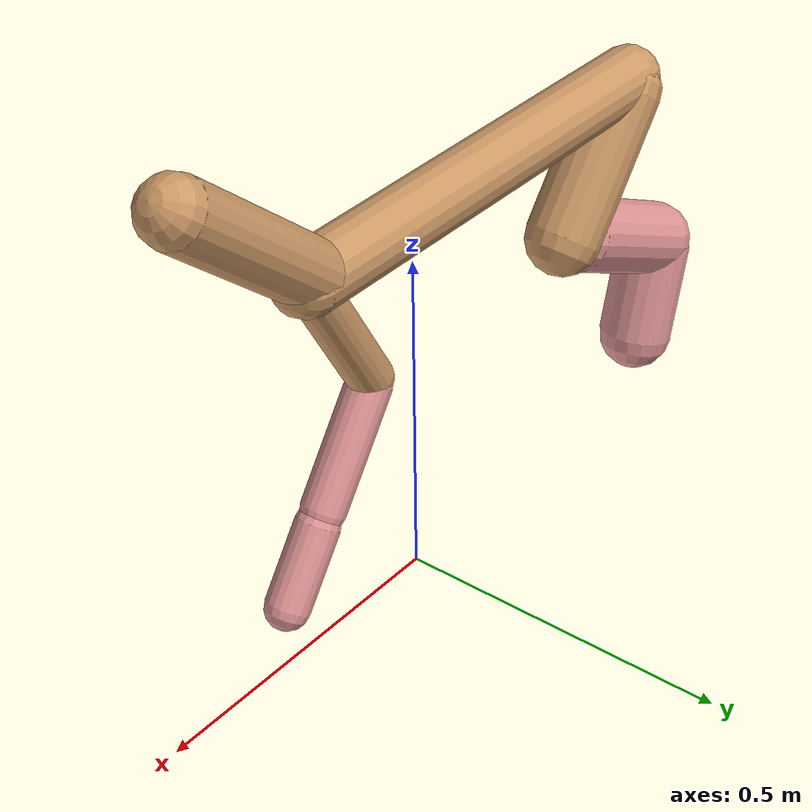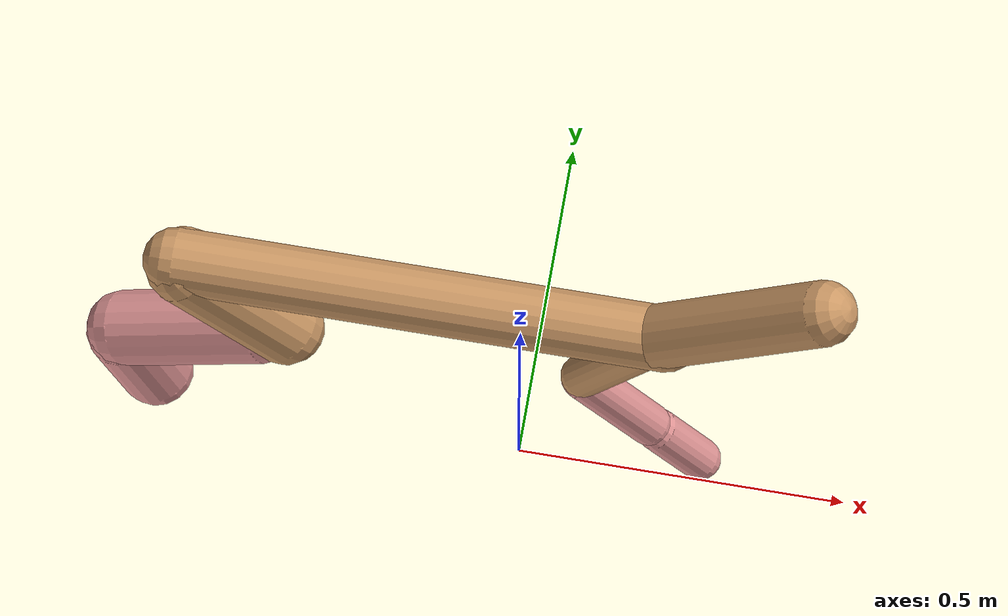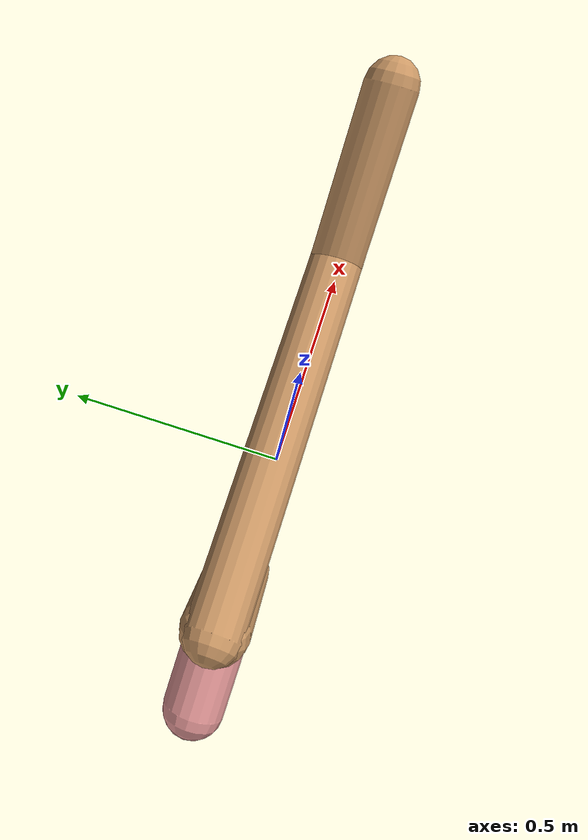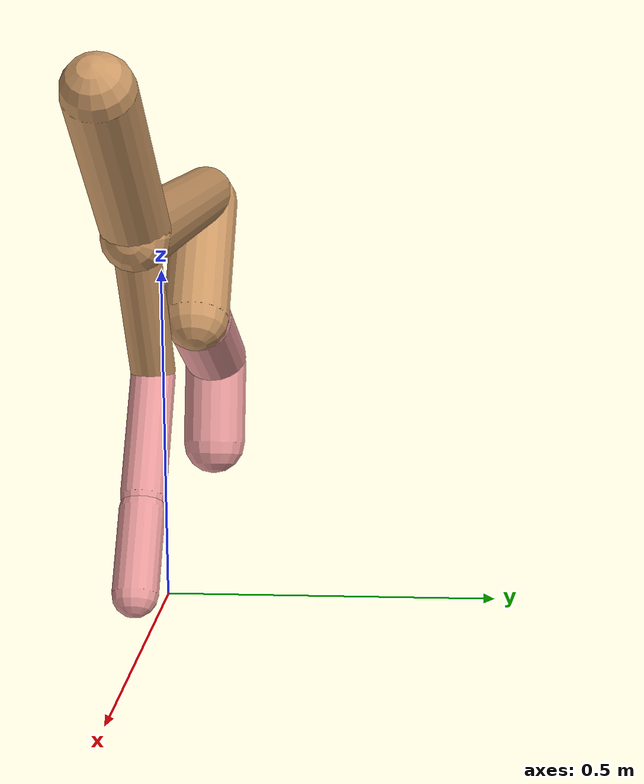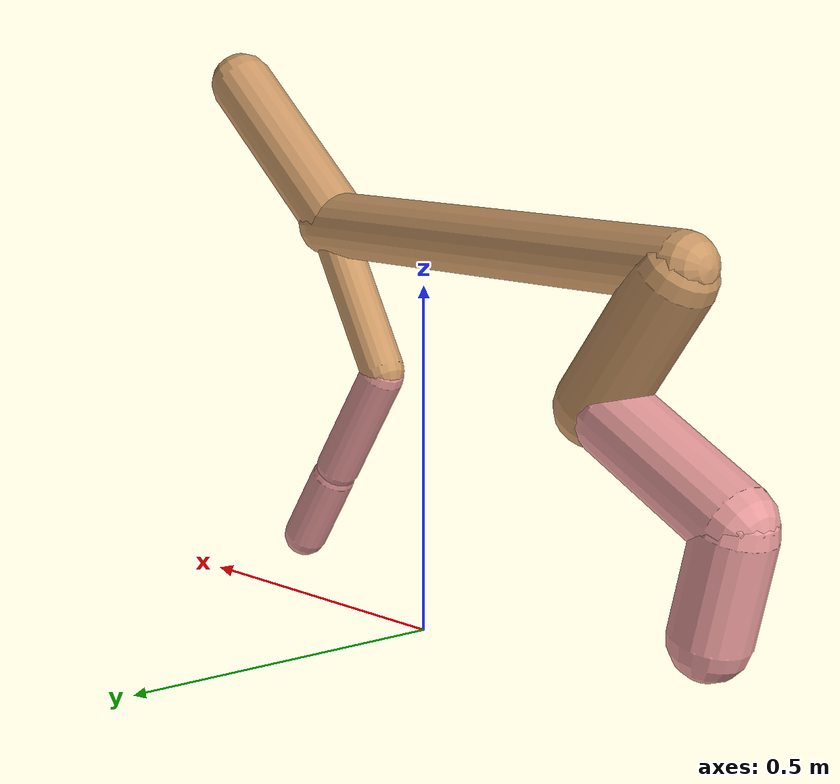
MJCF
<mujoco model="cheetah">
  <compiler angle="radian" coordinate="local" inertiafromgeom="true" settotalmass="14" />
  <default>
    <joint armature=".1" damping=".01" limited="true" solimplimit="0 .8 .03" solreflimit=".02 1" stiffness="8" />
    <geom conaffinity="0" condim="3" contype="1" friction="0.8 .1 .1" rgba="0.8 0.6 .4 1" solimp="0.0 0.8 0.01" solref="0.02 1" />
    <motor ctrllimited="true" ctrlrange="-1 1" />
  </default>
  <size nstack="300000" nuser_geom="1" />
  <option gravity="0 0 -9.81" timestep="0.01" />
  <worldbody>
    <body name="torso" pos="0.0 0.0 0.5720749574988591">
      <joint armature="0" axis="1 0 0" damping="0" limited="false" name="ignorex" pos="0 0 0" stiffness="0" type="slide" />
      <joint armature="0" axis="0 0 1" damping="0" limited="false" name="ignorez" pos="0 0 0" stiffness="0" type="slide" />
      <joint armature="0" axis="0 1 0" damping="0" limited="false" name="ignorey" pos="0 0 0" stiffness="0" type="hinge" />
      <geom fromto="-0.5 0.0 0.0 0.21065649373648776 0.0 0.0" name="torso" size="0.047702916014823335" type="capsule" />
      <geom axisangle="0 1 0 .87" name="head" pos="0.31065649373648774 0.0 0.1" size="0.047377235676068996 0.15" type="capsule" />

      <body name="bthigh" pos="-.5 0 0">
        <joint axis="0 1 0" damping="6" name="bthigh" pos="0 0 0" range="-.52 1.05" stiffness="240" type="hinge" />
        <geom axisangle="0 1 0 -3.8" name="bthigh" pos="0.08229684617181582 0.0 -0.10698590002336057" size="0.056794791197155026 0.11596466888084264" type="capsule" />
        <body name="bshin" pos="0.12459369234363164 0.0 -0.20397180004672114">
          <joint axis="0 1 0" damping="4.5" name="bshin" pos="0 0 0" range="-.785 .785" stiffness="180" type="hinge" />
          <geom axisangle="0 1 0 -2.03" name="bshin" pos="-0.11313449346276516 0.0 -0.05656724673138258" rgba="0.9 0.6 0.6 1" size="0.056794791197155026 0.11996345056638894" type="capsule" />
          <body name="bfoot" pos="-0.22626898692553032 0.0 -0.11313449346276516">
            <joint axis="0 1 0" damping="3" name="bfoot" pos="0 0 0" range="-.4 .785" stiffness="120" type="hinge" />
            <geom axisangle="0 1 0 -.27" name="bfoot" pos="0.024438401678424662 0.0 -0.07901749876023975" rgba="0.9 0.6 0.6 1" size="0.056794791197155026 0.07517709568827041" type="capsule" />
            <inertial mass="10" />
          </body>
        </body>
      </body>
      <body name="fthigh" pos="0.21065649373648776 0.0 0.0">
        <joint axis="0 1 0" damping="4.5" name="fthigh" pos="0 0 0" range="-1.5 0.8" stiffness="180" type="hinge" />
        <geom axisangle="0 1 0 .52" name="fthigh" pos="-0.061032555362709344 0.0 -0.10462723776464458" size="0.03224685011964524 0.11520289680684966" type="capsule" />
        <body name="fshin" pos="-0.12206511072541869 0.0 -0.20925447552928916">
          <joint axis="0 1 0" damping="3" name="fshin" pos="0 0 0" range="-1.2 1.1" stiffness="120" type="hinge" />
          <geom axisangle="0 1 0 -.6" name="fshin" pos="0.05669530980924378 0.0 -0.07850119819741447" rgba="0.9 0.6 0.6 1" size="0.03224685011964524 0.09181584256786512" type="capsule" />
          <body name="ffoot" pos="0.11339061961848756 0.0 -0.15700239639482894">
            <joint axis="0 1 0" damping="1.5" name="ffoot" pos="0 0 0" range="-3.1 -0.3" stiffness="60" type="hinge" />
            <geom axisangle="0 1 0 -.6" name="ffoot" pos="0.039934779655218015 0.0 -0.06212076835256137" rgba="0.9 0.6 0.6 1" size="0.03224685011964524 0.06063310358255245" type="capsule" />
            <inertial mass="10" />
          </body>
        </body>
      </body>
    </body>
  </worldbody>
  <actuator>
    <motor gear="120" joint="bthigh" name="bthigh" />
    <motor gear="90" joint="bshin" name="bshin" />
    <motor gear="60" joint="bfoot" name="bfoot" />
    <motor gear="120" joint="fthigh" name="fthigh" />
    <motor gear="60" joint="fshin" name="fshin" />
    <motor gear="30" joint="ffoot" name="ffoot" />
  </actuator>
</mujoco>
